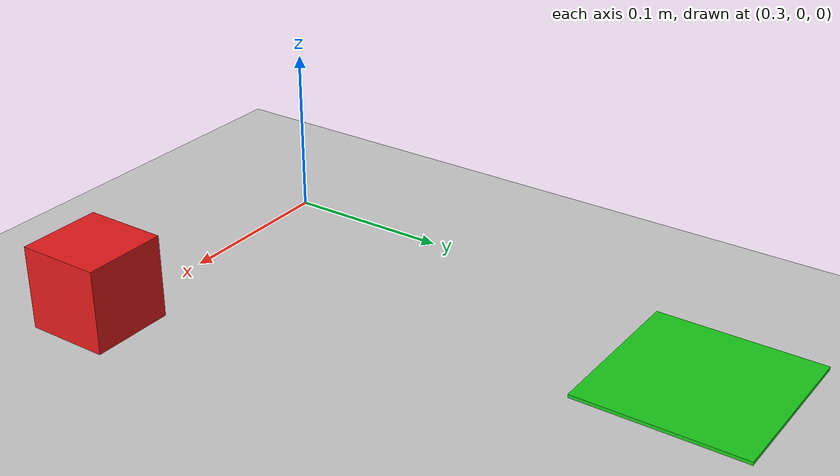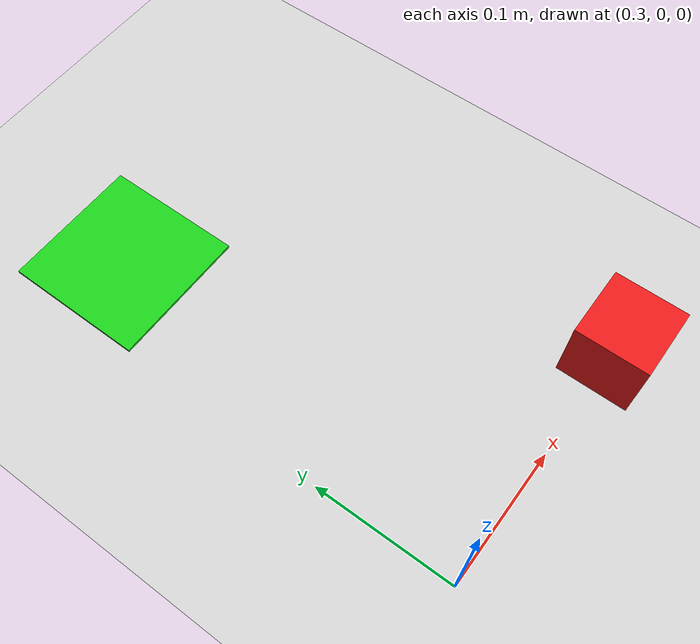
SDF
<?xml version="1.0"?>
<sdf version="1.6">
  <world name="default">
    <gravity>0 0 -9.81</gravity>
    <physics name="ode" type="ode">
      <max_step_size>0.001</max_step_size>
      <real_time_update_rate>1000</real_time_update_rate>
    </physics>
    <include><uri>model://sun</uri></include>
    <include><uri>model://ground_plane</uri></include>
    <plugin name="gazebo_link_attacher" filename="libgazebo_link_attacher.so"/>
    <plugin name="gazebo_ros_state" filename="libgazebo_ros_state.so">
      <ros><namespace>/gazebo</namespace></ros>
      <update_rate>50.0</update_rate>
    </plugin>
    <model name="pick_box">
      <pose>0.48 0 0.025 0 0 0</pose>
      <link name="box_link">
        <inertial>
          <mass>0.08</mass>
          <inertia>
            <ixx>0.0000333</ixx><iyy>0.0000333</iyy><izz>0.0000333</izz>
            <ixy>0</ixy><ixz>0</ixz><iyz>0</iyz>
          </inertia>
        </inertial>
        <collision name="collision">
          <geometry><box><size>0.05 0.05 0.05</size></box></geometry>
          <surface><friction><ode><mu>2</mu><mu2>2</mu2></ode></friction></surface>
        </collision>
        <visual name="visual">
          <geometry><box><size>0.05 0.05 0.05</size></box></geometry>
          <material><ambient>0.9 0.1 0.1 1</ambient><diffuse>0.9 0.1 0.1 1</diffuse></material>
        </visual>
      </link>
    </model>
    <model name="target_marker">
      <static>true</static>
      <pose>0.35 0.30 0.002 0 0 0</pose>
      <link name="marker_link">
        <visual name="marker">
          <geometry><box><size>0.10 0.10 0.002</size></box></geometry>
          <material><ambient>0.1 0.8 0.1 1</ambient><diffuse>0.1 0.8 0.1 1</diffuse></material>
        </visual>
      </link>
    </model>
  </world>
</sdf>
